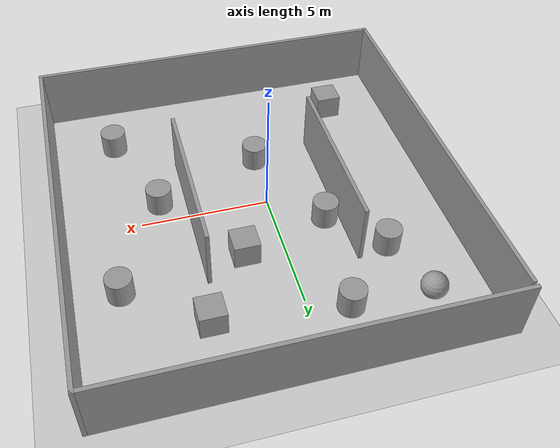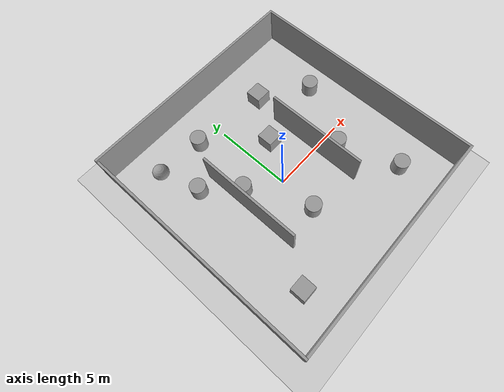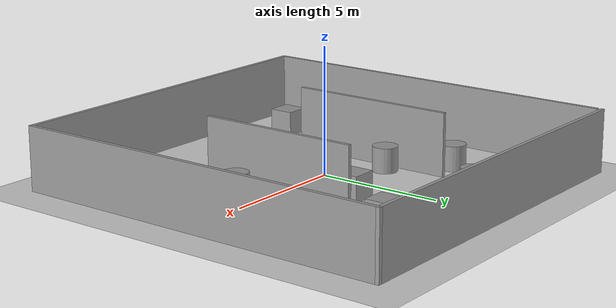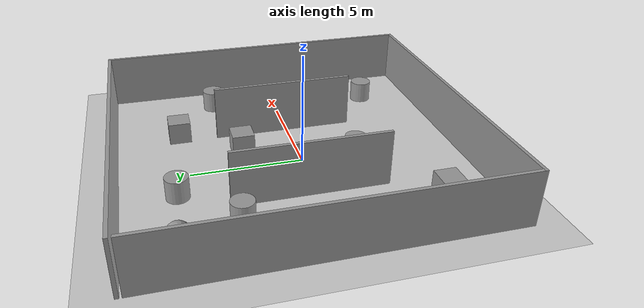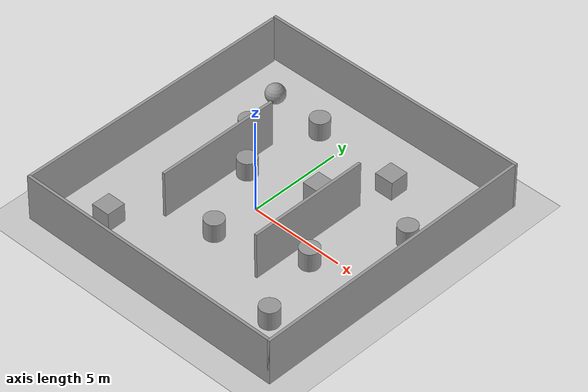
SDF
<sdf version="1.7">
 <world name="default">
  <light name="sun" type="directional">
   <pose>0 0 10 0 -0 0</pose>
   <diffuse>0.8 0.8 0.8 1</diffuse>
   <specular>0.2 0.2 0.2 1</specular>
   <attenuation>
    <range>1000</range>
    <constant>0.9</constant>
    <linear>0.01</linear>
    <quadratic>0.001</quadratic>
   </attenuation>
   <direction>-0.5 0.1 -0.9</direction>
   <spot><inner_angle>0</inner_angle><outer_angle>0</outer_angle><falloff>0</falloff></spot>
  </light>
  <model name="ground_plane">
   <static>1</static>
   <link name="link">
    <collision name="collision">
     <geometry><plane><normal>0 0 1</normal><size>100 100</size></plane></geometry>
     <surface>
      <contact><collide_bitmask>65535</collide_bitmask></contact>
      <friction><ode><mu>100</mu><mu2>50</mu2></ode></friction>
     </surface>
    </collision>
    <visual name="visual">
     <cast_shadows>0</cast_shadows>
     <geometry><plane><normal>0 0 1</normal><size>100 100</size></plane></geometry>
     <material>
      <script><uri>file://media/materials/scripts/gazebo.material</uri><name>Gazebo/Grey</name></script>
     </material>
    </visual>
   </link>
  </model>
  <gravity>0 0 -9.8</gravity>
  <magnetic_field>6e-06 2.3e-05 -4.2e-05</magnetic_field>
  <atmosphere type="adiabatic"/>
  <physics type="ode">
   <max_step_size>0.001</max_step_size>
   <real_time_factor>1</real_time_factor>
   <real_time_update_rate>1000</real_time_update_rate>
  </physics>
  <scene><ambient>0.4 0.4 0.4 1</ambient><background>0.7 0.7 0.7 1</background><shadows>1</shadows></scene>
  <audio><device>default</device></audio>
  <spherical_coordinates>
   <surface_model>EARTH_WGS84</surface_model>
   <latitude_deg>0</latitude_deg>
   <longitude_deg>0</longitude_deg>
   <elevation>0</elevation>
   <heading_deg>0</heading_deg>
  </spherical_coordinates>
  <model name="unit_cylinder">
   <pose>-1.9237 1.4278 0.499998 3e-06 -2e-06 0</pose>
   <link name="link">
    <inertial>
     <mass>1</mass>
     <inertia><ixx>0.145833</ixx><ixy>0</ixy><ixz>0</ixz><iyy>0.145833</iyy><iyz>0</iyz><izz>0.125</izz></inertia>
    </inertial>
    <collision name="collision">
     <geometry><cylinder><radius>0.5</radius><length>1</length></cylinder></geometry>
    </collision>
    <visual name="visual">
     <geometry><cylinder><radius>0.5</radius><length>1</length></cylinder></geometry>
     <material>
      <script><name>Gazebo/Grey</name><uri>file://media/materials/scripts/gazebo.material</uri></script>
     </material>
    </visual>
   </link>
  </model>
  <model name="unit_box">
   <pose>1.52944 2.43369 0.499995 0 1e-05 0</pose>
   <link name="link">
    <inertial>
     <mass>1</mass>
     <inertia>
      <ixx>0.166667</ixx>
      <ixy>0</ixy>
      <ixz>0</ixz>
      <iyy>0.166667</iyy>
      <iyz>0</iyz>
      <izz>0.166667</izz>
     </inertia>
    </inertial>
    <collision name="collision"><geometry><box><size>1 1 1</size></box></geometry></collision>
    <visual name="visual">
     <geometry><box><size>1 1 1</size></box></geometry>
     <material>
      <script><name>Gazebo/Grey</name><uri>file://media/materials/scripts/gazebo.material</uri></script>
     </material>
    </visual>
   </link>
  </model>
  <model name="unit_cylinder_0">
   <pose>-0.132136 -2.44955 0.499993 -3e-06 2e-06 0</pose>
   <link name="link">
    <inertial>
     <mass>1</mass>
     <inertia><ixx>0.145833</ixx><ixy>0</ixy><ixz>0</ixz><iyy>0.145833</iyy><iyz>0</iyz><izz>0.125</izz></inertia>
    </inertial>
    <collision name="collision">
     <geometry><cylinder><radius>0.5</radius><length>1</length></cylinder></geometry>
    </collision>
    <visual name="visual">
     <geometry><cylinder><radius>0.5</radius><length>1</length></cylinder></geometry>
     <material>
      <script><name>Gazebo/Grey</name><uri>file://media/materials/scripts/gazebo.material</uri></script>
     </material>
    </visual>
   </link>
  </model>
  <model name="unit_cylinder_1">
   <pose>-1.4912 5.63865 0.499998 3e-06 -3e-06 0</pose>
   <link name="link">
    <inertial>
     <mass>1</mass>
     <inertia><ixx>0.145833</ixx><ixy>0</ixy><ixz>0</ixz><iyy>0.145833</iyy><iyz>0</iyz><izz>0.125</izz></inertia>
    </inertial>
    <collision name="collision">
     <geometry><cylinder><radius>0.5</radius><length>1</length></cylinder></geometry>
    </collision>
    <visual name="visual">
     <geometry><cylinder><radius>0.5</radius><length>1</length></cylinder></geometry>
     <material>
      <script><name>Gazebo/Grey</name><uri>file://media/materials/scripts/gazebo.material</uri></script>
     </material>
    </visual>
   </link>
  </model>
  <model name="unit_cylinder_3">
   <pose>4.14198 -0.887943 0.499998 3e-06 -3e-06 0</pose>
   <link name="link">
    <inertial>
     <mass>1</mass>
     <inertia><ixx>0.145833</ixx><ixy>0</ixy><ixz>0</ixz><iyy>0.145833</iyy><iyz>0</iyz><izz>0.125</izz></inertia>
    </inertial>
    <collision name="collision">
     <geometry><cylinder><radius>0.5</radius><length>1</length></cylinder></geometry>
    </collision>
    <visual name="visual">
     <geometry><cylinder><radius>0.5</radius><length>1</length></cylinder></geometry>
     <material>
      <script><name>Gazebo/Grey</name><uri>file://media/materials/scripts/gazebo.material</uri></script>
     </material>
    </visual>
   </link>
  </model>
  <model name="unit_cylinder_2">
   <pose>-3.72916 3.35119 0.499998 3e-06 -3e-06 0</pose>
   <link name="link">
    <inertial>
     <mass>1</mass>
     <inertia><ixx>0.145833</ixx><ixy>0</ixy><ixz>0</ixz><iyy>0.145833</iyy><iyz>0</iyz><izz>0.125</izz></inertia>
    </inertial>
    <collision name="collision">
     <geometry><cylinder><radius>0.5</radius><length>1</length></cylinder></geometry>
    </collision>
    <visual name="visual">
     <geometry><cylinder><radius>0.5</radius><length>1</length></cylinder></geometry>
     <material>
      <script><name>Gazebo/Grey</name><uri>file://media/materials/scripts/gazebo.material</uri></script>
     </material>
    </visual>
   </link>
  </model>
  <model name="unit_box_0">
   <pose>3.38075 5.11514 0.499995 0 1e-05 0</pose>
   <link name="link">
    <inertial>
     <mass>1</mass>
     <inertia>
      <ixx>0.166667</ixx>
      <ixy>0</ixy>
      <ixz>0</ixz>
      <iyy>0.166667</iyy>
      <iyz>0</iyz>
      <izz>0.166667</izz>
     </inertia>
    </inertial>
    <collision name="collision"><geometry><box><size>1 1 1</size></box></geometry></collision>
    <visual name="visual">
     <geometry><box><size>1 1 1</size></box></geometry>
     <material>
      <script><name>Gazebo/Grey</name><uri>file://media/materials/scripts/gazebo.material</uri></script>
     </material>
    </visual>
   </link>
  </model>
  <model name="place">
   <pose>0.664947 0.394537 0 0 -0 0</pose>
   <link name="Wall_10">
    <collision name="Wall_10_Collision">
     <geometry><box><size>6.75 0.15 2.5</size></box></geometry>
     <pose>0 0 1.25 0 -0 0</pose>
    </collision>
    <visual name="Wall_10_Visual">
     <pose>0 0 1.25 0 -0 0</pose>
     <geometry><box><size>6.75 0.15 2.5</size></box></geometry>
     <material>
      <script><uri>file://media/materials/scripts/gazebo.material</uri><name>Gazebo/Grey</name></script>
      <ambient>1 1 1 1</ambient>
     </material>
     <meta><layer>0</layer></meta>
    </visual>
    <pose>-3.24987 -0.113889 0 0 -0 -1.5708</pose>
   </link>
   <link name="Wall_12">
    <collision name="Wall_12_Collision">
     <geometry><box><size>6.5 0.15 2.5</size></box></geometry>
     <pose>0 0 1.25 0 -0 0</pose>
    </collision>
    <visual name="Wall_12_Visual">
     <pose>0 0 1.25 0 -0 0</pose>
     <geometry><box><size>6.5 0.15 2.5</size></box></geometry>
     <material>
      <script><uri>file://media/materials/scripts/gazebo.material</uri><name>Gazebo/Grey</name></script>
      <ambient>1 1 1 1</ambient>
     </material>
     <meta><layer>0</layer></meta>
    </visual>
    <pose>2.38937 -0.254891 0 0 -0 -1.5708</pose>
   </link>
   <link name="Wall_5">
    <collision name="Wall_5_Collision">
     <geometry><box><size>15.25 0.15 2.5</size></box></geometry>
     <pose>0 0 1.25 0 -0 0</pose>
    </collision>
    <visual name="Wall_5_Visual">
     <pose>0 0 1.25 0 -0 0</pose>
     <geometry><box><size>15.25 0.15 2.5</size></box></geometry>
     <material>
      <script><uri>file://media/materials/scripts/gazebo.material</uri><name>Gazebo/Grey</name></script>
      <ambient>1 1 1 1</ambient>
     </material>
     <meta><layer>0</layer></meta>
    </visual>
    <pose>-7.3 -0.125 0 0 -0 -1.5708</pose>
   </link>
   <link name="Wall_6">
    <collision name="Wall_6_Collision">
     <geometry><box><size>14.75 0.15 2.5</size></box></geometry>
     <pose>0 0 1.25 0 -0 0</pose>
    </collision>
    <visual name="Wall_6_Visual">
     <pose>0 0 1.25 0 -0 0</pose>
     <geometry><box><size>14.75 0.15 2.5</size></box></geometry>
     <material>
      <script><uri>file://media/materials/scripts/gazebo.material</uri><name>Gazebo/Grey</name></script>
      <ambient>1 1 1 1</ambient>
     </material>
     <meta><layer>0</layer></meta>
    </visual>
    <pose>-0 -7.675 0 0 -0 0</pose>
   </link>
   <link name="Wall_7">
    <collision name="Wall_7_Collision">
     <geometry><box><size>15.5 0.15 2.5</size></box></geometry>
     <pose>0 0 1.25 0 -0 0</pose>
    </collision>
    <visual name="Wall_7_Visual">
     <pose>0 0 1.25 0 -0 0</pose>
     <geometry><box><size>15.5 0.15 2.5</size></box></geometry>
     <material>
      <script><uri>file://media/materials/scripts/gazebo.material</uri><name>Gazebo/Grey</name></script>
      <ambient>1 1 1 1</ambient>
     </material>
     <meta><layer>0</layer></meta>
    </visual>
    <pose>7.3 -0 0 0 -0 1.5708</pose>
   </link>
   <link name="Wall_8">
    <collision name="Wall_8_Collision">
     <geometry><box><size>14.75 0.15 2.5</size></box></geometry>
     <pose>0 0 1.25 0 -0 0</pose>
    </collision>
    <visual name="Wall_8_Visual">
     <pose>0 0 1.25 0 -0 0</pose>
     <geometry><box><size>14.75 0.15 2.5</size></box></geometry>
     <material>
      <script><uri>file://media/materials/scripts/gazebo.material</uri><name>Gazebo/Grey</name></script>
      <ambient>1 1 1 1</ambient>
     </material>
     <meta><layer>0</layer></meta>
    </visual>
    <pose>-0 7.675 0 0 -0 3.14159</pose>
   </link>
   <static>1</static>
  </model>
  <model name="unit_box_1">
   <pose>-4.09346 -5.02405 0.499995 -1e-05 -0 -0</pose>
   <link name="link">
    <inertial>
     <mass>1</mass>
     <inertia>
      <ixx>0.166667</ixx>
      <ixy>0</ixy>
      <ixz>0</ixz>
      <iyy>0.166667</iyy>
      <iyz>0</iyz>
      <izz>0.166667</izz>
     </inertia>
    </inertial>
    <collision name="collision"><geometry><box><size>1 1 1</size></box></geometry></collision>
    <visual name="visual">
     <geometry><box><size>1 1 1</size></box></geometry>
     <material>
      <script><name>Gazebo/Grey</name><uri>file://media/materials/scripts/gazebo.material</uri></script>
     </material>
    </visual>
   </link>
  </model>
  <model name="unit_cylinder_4">
   <pose>6.21499 3.11732 0.499997 3e-06 4e-06 -0</pose>
   <link name="link">
    <inertial>
     <mass>1</mass>
     <inertia><ixx>0.145833</ixx><ixy>0</ixy><ixz>0</ixz><iyy>0.145833</iyy><iyz>0</iyz><izz>0.125</izz></inertia>
    </inertial>
    <collision name="collision">
     <geometry><cylinder><radius>0.5</radius><length>1</length></cylinder></geometry>
    </collision>
    <visual name="visual">
     <geometry><cylinder><radius>0.5</radius><length>1</length></cylinder></geometry>
     <material>
      <script><name>Gazebo/Grey</name><uri>file://media/materials/scripts/gazebo.material</uri></script>
     </material>
    </visual>
   </link>
  </model>
  <model name="unit_cylinder_5">
   <pose>5.43733 -4.69452 0.499993 -3e-06 -4e-06 -0</pose>
   <link name="link">
    <inertial>
     <mass>1</mass>
     <inertia><ixx>0.145833</ixx><ixy>0</ixy><ixz>0</ixz><iyy>0.145833</iyy><iyz>0</iyz><izz>0.125</izz></inertia>
    </inertial>
    <collision name="collision">
     <geometry><cylinder><radius>0.5</radius><length>1</length></cylinder></geometry>
    </collision>
    <visual name="visual">
     <geometry><cylinder><radius>0.5</radius><length>1</length></cylinder></geometry>
     <material>
      <script><name>Gazebo/Grey</name><uri>file://media/materials/scripts/gazebo.material</uri></script>
     </material>
    </visual>
   </link>
  </model>
  <model name="unit_sphere">
   <pose>-4.48414 5.85011 0.5 0 -0 0</pose>
   <link name="link">
    <inertial>
     <mass>1</mass>
     <inertia><ixx>0.1</ixx><ixy>0</ixy><ixz>0</ixz><iyy>0.1</iyy><iyz>0</iyz><izz>0.1</izz></inertia>
    </inertial>
    <collision name="collision"><geometry><sphere><radius>0.5</radius></sphere></geometry></collision>
    <visual name="visual">
     <geometry><sphere><radius>0.5</radius></sphere></geometry>
     <material>
      <script><name>Gazebo/Grey</name><uri>file://media/materials/scripts/gazebo.material</uri></script>
     </material>
    </visual>
   </link>
  </model>
 </world>
</sdf>
